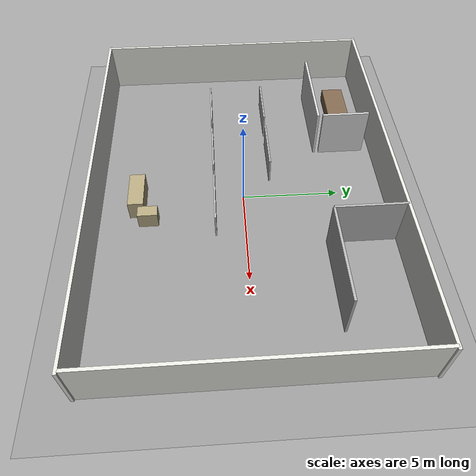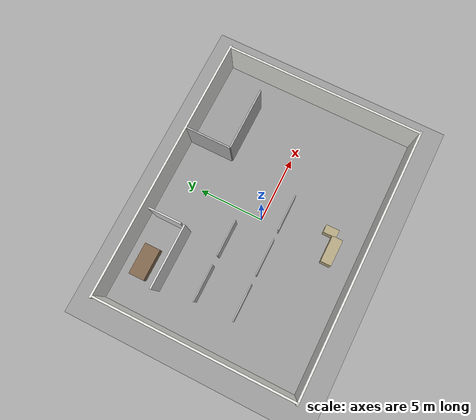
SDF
<?xml version="1.0"?>
<sdf version="1.8">
  <world name="indoor_office">

    <physics name="1ms" type="dart">
      <max_step_size>0.001</max_step_size>
      <real_time_factor>1.0</real_time_factor>
    </physics>

    <!-- Ignition Gazebo system plugins (required for Fortress) -->
    <plugin
      filename="ignition-gazebo-physics-system"
      name="ignition::gazebo::systems::Physics">
    </plugin>

    <plugin
      filename="ignition-gazebo-sensors-system"
      name="ignition::gazebo::systems::Sensors">
      <render_engine>ogre2</render_engine>
    </plugin>

    <plugin
      filename="ignition-gazebo-imu-system"
      name="ignition::gazebo::systems::Imu">
    </plugin>

    <plugin
      filename="ignition-gazebo-contact-system"
      name="ignition::gazebo::systems::Contact">
    </plugin>

    <plugin
      filename="ignition-gazebo-user-commands-system"
      name="ignition::gazebo::systems::UserCommands">
    </plugin>

    <plugin
      filename="ignition-gazebo-scene-broadcaster-system"
      name="ignition::gazebo::systems::SceneBroadcaster">
    </plugin>

    <!-- Ceiling-mounted office lighting -->
    <light name="light_center" type="point">
      <pose>0 0 3.5 0 0 0</pose>
      <diffuse>0.85 0.85 0.95 1</diffuse>
      <specular>0.1 0.1 0.1 1</specular>
      <attenuation><range>25</range><constant>0.5</constant><linear>0.02</linear><quadratic>0.001</quadratic></attenuation>
      <cast_shadows>false</cast_shadows>
    </light>
    <light name="light_west" type="point">
      <pose>-6 0 3.5 0 0 0</pose>
      <diffuse>0.7 0.7 0.85 1</diffuse>
      <specular>0.05 0.05 0.05 1</specular>
      <attenuation><range>15</range><constant>0.5</constant><linear>0.04</linear><quadratic>0.001</quadratic></attenuation>
      <cast_shadows>false</cast_shadows>
    </light>
    <light name="light_east" type="point">
      <pose>6 0 3.5 0 0 0</pose>
      <diffuse>0.7 0.7 0.85 1</diffuse>
      <specular>0.05 0.05 0.05 1</specular>
      <attenuation><range>15</range><constant>0.5</constant><linear>0.04</linear><quadratic>0.001</quadratic></attenuation>
      <cast_shadows>false</cast_shadows>
    </light>

    <!-- Ground plane (inline — no Fuel/model:// download required) -->
    <model name="ground_plane">
      <static>true</static>
      <link name="link">
        <collision name="collision">
          <geometry>
            <plane>
              <normal>0 0 1</normal>
              <size>100 100</size>
            </plane>
          </geometry>
        </collision>
        <visual name="visual">
          <geometry>
            <plane>
              <normal>0 0 1</normal>
              <size>100 100</size>
            </plane>
          </geometry>
          <material>
            <ambient>0.6 0.6 0.6 1</ambient>
            <diffuse>0.6 0.6 0.6 1</diffuse>
            <specular>0.1 0.1 0.1 1</specular>
          </material>
        </visual>
      </link>
    </model>

    <!-- ── Perimeter walls (20 m × 15 m, thickness 0.15 m, height 2.8 m) ── -->
    <model name="wall_south">
      <static>true</static><pose>0 -7.5 1.4 0 0 0</pose>
      <link name="link">
        <collision name="col"><geometry><box><size>20.3 0.15 2.8</size></box></geometry></collision>
        <visual name="vis">
          <geometry><box><size>20.3 0.15 2.8</size></box></geometry>
          <material><ambient>0.9 0.9 0.88 1</ambient><diffuse>0.9 0.9 0.88 1</diffuse></material>
        </visual>
      </link>
    </model>
    <model name="wall_north">
      <static>true</static><pose>0 7.5 1.4 0 0 0</pose>
      <link name="link">
        <collision name="col"><geometry><box><size>20.3 0.15 2.8</size></box></geometry></collision>
        <visual name="vis">
          <geometry><box><size>20.3 0.15 2.8</size></box></geometry>
          <material><ambient>0.9 0.9 0.88 1</ambient><diffuse>0.9 0.9 0.88 1</diffuse></material>
        </visual>
      </link>
    </model>
    <model name="wall_west">
      <static>true</static><pose>-10 0 1.4 0 0 0</pose>
      <link name="link">
        <collision name="col"><geometry><box><size>0.15 15.0 2.8</size></box></geometry></collision>
        <visual name="vis">
          <geometry><box><size>0.15 15.0 2.8</size></box></geometry>
          <material><ambient>0.9 0.9 0.88 1</ambient><diffuse>0.9 0.9 0.88 1</diffuse></material>
        </visual>
      </link>
    </model>
    <model name="wall_east">
      <static>true</static><pose>10 0 1.4 0 0 0</pose>
      <link name="link">
        <collision name="col"><geometry><box><size>0.15 15.0 2.8</size></box></geometry></collision>
        <visual name="vis">
          <geometry><box><size>0.15 15.0 2.8</size></box></geometry>
          <material><ambient>0.9 0.9 0.88 1</ambient><diffuse>0.9 0.9 0.88 1</diffuse></material>
        </visual>
      </link>
    </model>

    <!-- ── Reception desk cluster (south entrance, y ≈ -5.5) ── -->
    <model name="reception_desk">
      <static>true</static><pose>0 -5.5 0.55 0 0 0</pose>
      <link name="link">
        <collision name="col"><geometry><box><size>2.0 0.8 1.1</size></box></geometry></collision>
        <visual name="vis">
          <geometry><box><size>2.0 0.8 1.1</size></box></geometry>
          <material><ambient>0.7 0.65 0.5 1</ambient><diffuse>0.7 0.65 0.5 1</diffuse></material>
        </visual>
      </link>
    </model>
    <model name="reception_side">
      <static>true</static><pose>1.3 -4.9 0.45 0 0 1.5708</pose>
      <link name="link">
        <collision name="col"><geometry><box><size>1.0 0.6 0.9</size></box></geometry></collision>
        <visual name="vis">
          <geometry><box><size>1.0 0.6 0.9</size></box></geometry>
          <material><ambient>0.7 0.65 0.5 1</ambient><diffuse>0.7 0.65 0.5 1</diffuse></material>
        </visual>
      </link>
    </model>

    <!-- ── Workstation cubicle dividers ── -->
    <!-- Row 1: y = -1.5. Three segments; gaps at x≈-4.3 and x≈-0.75 (each ~0.7 m wide). -->
    <model name="divider_R1_1"><static>true</static><pose>-6 -1.5 0.75 0 0 0</pose>
      <link name="link">
        <collision name="col"><geometry><box><size>2.8 0.08 1.5</size></box></geometry></collision>
        <visual name="vis"><geometry><box><size>2.8 0.08 1.5</size></box></geometry>
          <material><ambient>0.75 0.75 0.75 1</ambient><diffuse>0.75 0.75 0.75 1</diffuse></material></visual>
      </link></model>
    <model name="divider_R1_2"><static>true</static><pose>-2.5 -1.5 0.75 0 0 0</pose>
      <link name="link">
        <collision name="col"><geometry><box><size>2.8 0.08 1.5</size></box></geometry></collision>
        <visual name="vis"><geometry><box><size>2.8 0.08 1.5</size></box></geometry>
          <material><ambient>0.75 0.75 0.75 1</ambient><diffuse>0.75 0.75 0.75 1</diffuse></material></visual>
      </link></model>
    <model name="divider_R1_3"><static>true</static><pose>1 -1.5 0.75 0 0 0</pose>
      <link name="link">
        <collision name="col"><geometry><box><size>2.8 0.08 1.5</size></box></geometry></collision>
        <visual name="vis"><geometry><box><size>2.8 0.08 1.5</size></box></geometry>
          <material><ambient>0.75 0.75 0.75 1</ambient><diffuse>0.75 0.75 0.75 1</diffuse></material></visual>
      </link></model>

    <!-- Row 2: y = +1.5. Two segments; open on the right (x > -1.1). -->
    <model name="divider_R2_1"><static>true</static><pose>-6 1.5 0.75 0 0 0</pose>
      <link name="link">
        <collision name="col"><geometry><box><size>2.8 0.08 1.5</size></box></geometry></collision>
        <visual name="vis"><geometry><box><size>2.8 0.08 1.5</size></box></geometry>
          <material><ambient>0.75 0.75 0.75 1</ambient><diffuse>0.75 0.75 0.75 1</diffuse></material></visual>
      </link></model>
    <model name="divider_R2_2"><static>true</static><pose>-2.5 1.5 0.75 0 0 0</pose>
      <link name="link">
        <collision name="col"><geometry><box><size>2.8 0.08 1.5</size></box></geometry></collision>
        <visual name="vis"><geometry><box><size>2.8 0.08 1.5</size></box></geometry>
          <material><ambient>0.75 0.75 0.75 1</ambient><diffuse>0.75 0.75 0.75 1</diffuse></material></visual>
      </link></model>

    <!-- ── Meeting room (north-west corner) ── -->
    <model name="meeting_wall_s">
      <static>true</static><pose>-5.5 4.25 1.4 0 0 0</pose>
      <link name="link">
        <collision name="col"><geometry><box><size>4.8 0.12 2.8</size></box></geometry></collision>
        <visual name="vis">
          <geometry><box><size>4.8 0.12 2.8</size></box></geometry>
          <material><ambient>0.85 0.85 0.85 1</ambient><diffuse>0.85 0.85 0.85 1</diffuse></material>
        </visual>
      </link>
    </model>
    <model name="meeting_wall_e_upper">
      <static>true</static><pose>-3.15 5.75 1.4 0 0 1.5708</pose>
      <link name="link">
        <collision name="col"><geometry><box><size>2.5 0.12 2.8</size></box></geometry></collision>
        <visual name="vis">
          <geometry><box><size>2.5 0.12 2.8</size></box></geometry>
          <material><ambient>0.85 0.85 0.85 1</ambient><diffuse>0.85 0.85 0.85 1</diffuse></material>
        </visual>
      </link>
    </model>
    <model name="meeting_table">
      <static>true</static><pose>-6.5 6.0 0.38 0 0 0</pose>
      <link name="link">
        <collision name="col"><geometry><box><size>2.4 1.2 0.76</size></box></geometry></collision>
        <visual name="vis">
          <geometry><box><size>2.4 1.2 0.76</size></box></geometry>
          <material><ambient>0.5 0.4 0.3 1</ambient><diffuse>0.5 0.4 0.3 1</diffuse></material>
        </visual>
      </link>
    </model>

    <!-- ── Server room partition (north-east corner) ── -->
    <model name="server_wall_s">
      <static>true</static><pose>5.5 4.0 1.4 0 0 0</pose>
      <link name="link">
        <collision name="col"><geometry><box><size>4.8 0.12 2.8</size></box></geometry></collision>
        <visual name="vis">
          <geometry><box><size>4.8 0.12 2.8</size></box></geometry>
          <material><ambient>0.7 0.7 0.7 1</ambient><diffuse>0.7 0.7 0.7 1</diffuse></material>
        </visual>
      </link>
    </model>
    <model name="server_wall_w">
      <static>true</static><pose>3.1 5.75 1.4 0 0 1.5708</pose>
      <link name="link">
        <collision name="col"><geometry><box><size>3.5 0.12 2.8</size></box></geometry></collision>
        <visual name="vis">
          <geometry><box><size>3.5 0.12 2.8</size></box></geometry>
          <material><ambient>0.7 0.7 0.7 1</ambient><diffuse>0.7 0.7 0.7 1</diffuse></material>
        </visual>
      </link>
    </model>

  </world>
</sdf>
